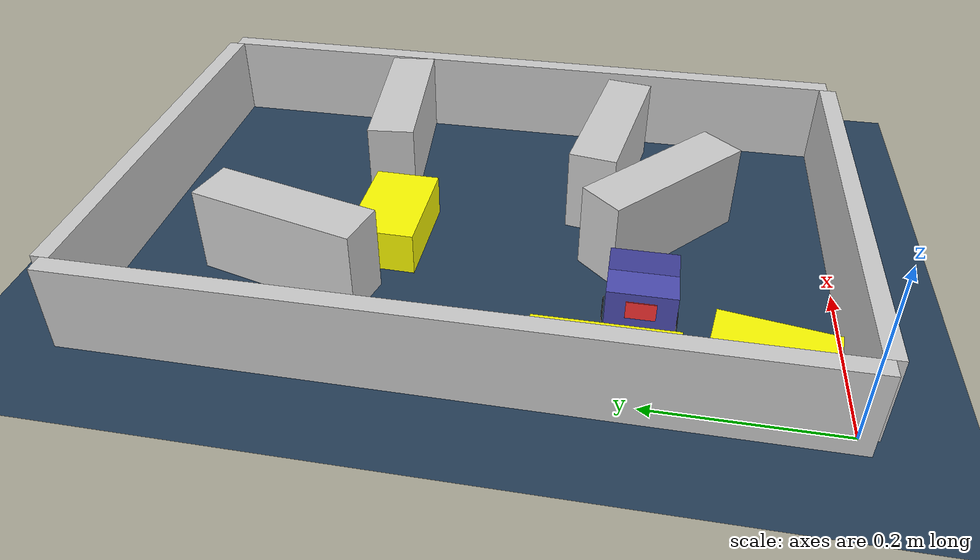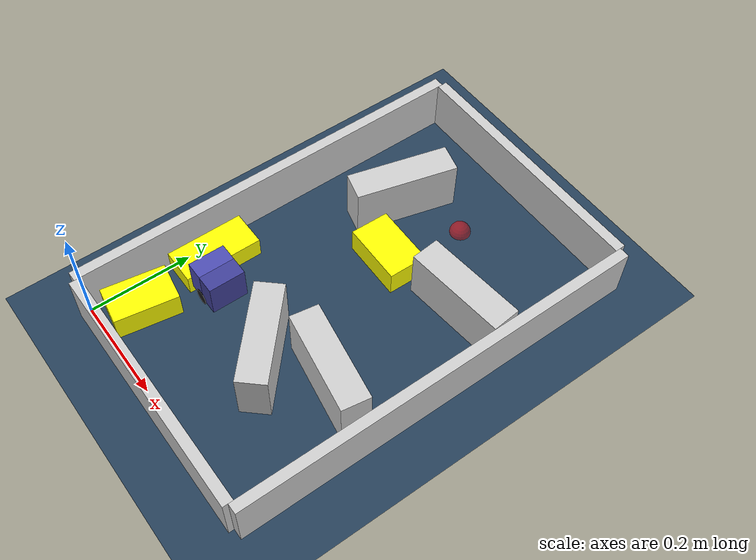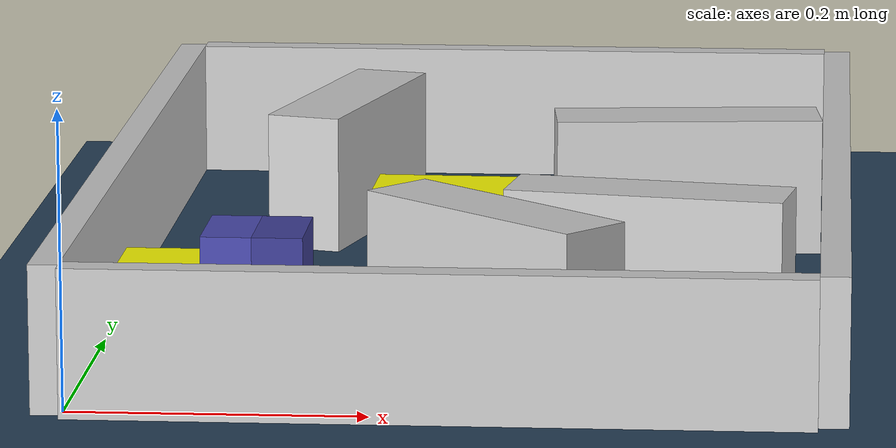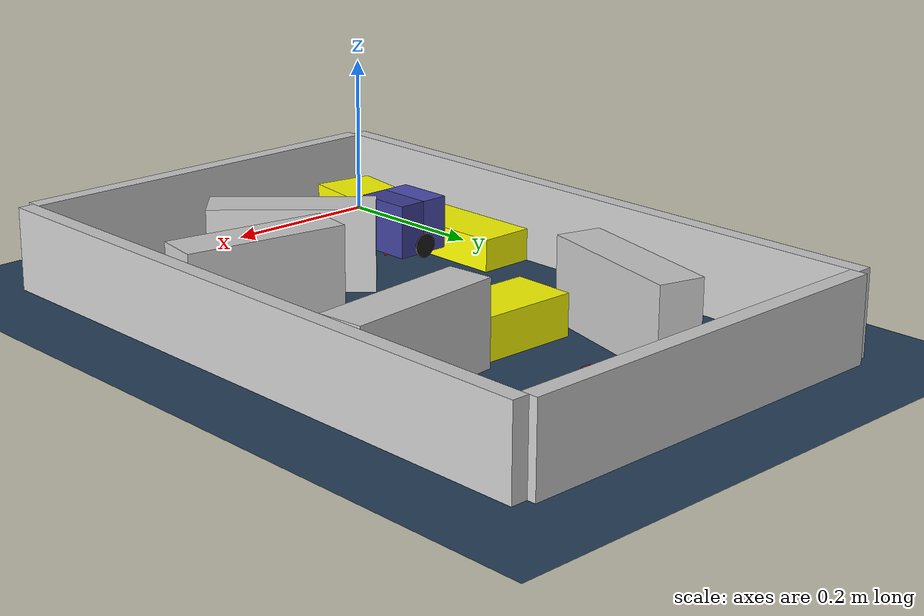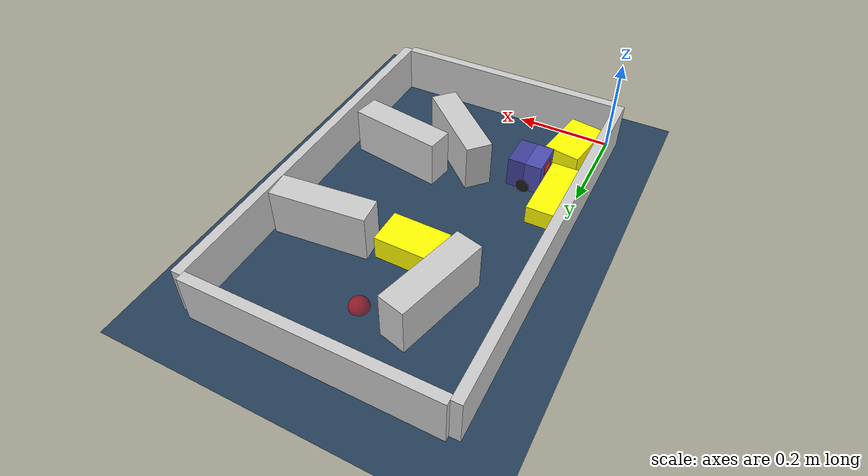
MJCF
<?xml version='1.0' encoding='utf-8'?>
<mujoco model="real_buildable">
  <compiler angle="degree" />
  <option timestep="0.002" integrator="implicitfast" iterations="100" cone="elliptic" />
  <default>
    <geom density="1" />
  </default>
  <asset>
    <texture builtin="gradient" height="3072" rgb1="0.3 0.5 0.7" rgb2="0 0 0" type="skybox" width="512" />
    <texture builtin="checker" height="300" mark="edge" markrgb="0.8 0.8 0.8" name="groundplane" rgb1="0.2 0.3 0.4" rgb2="0.1 0.2 0.3" type="2d" width="300" />
    <material name="groundplane" reflectance="0.2" texrepeat="5 5" texture="groundplane" texuniform="true" />
  </asset>
  <worldbody>
    <light dir="0 0 -1" directional="true" pos="0 0 1.5" />
    <geom name="floor" type="plane" condim="4" friction="0.5 0.005 0.001" material="groundplane" size="0 0 0.05" />
    <body name="walls">
      <geom name="wall_boundary_left" type="box" condim="4" friction="1.0 0.005 0.0001" rgba="0.8 0.8 0.8 1" pos="-0.010000 0.387500 0.050000" euler="0 0 0.000000" size="0.010000 0.397500 0.050000" />
      <geom name="wall_boundary_right" type="box" condim="4" friction="1.0 0.005 0.0001" rgba="0.8 0.8 0.8 1" pos="0.500000 0.387500 0.050000" euler="0 0 0.000000" size="0.010000 0.397500 0.050000" />
      <geom name="wall_boundary_bottom" type="box" condim="4" friction="1.0 0.005 0.0001" rgba="0.8 0.8 0.8 1" pos="0.245000 -0.010000 0.050000" euler="0 0 0.000000" size="0.245000 0.010000 0.050000" />
      <geom name="wall_boundary_top" type="box" condim="4" friction="1.0 0.005 0.0001" rgba="0.8 0.8 0.8 1" pos="0.245000 0.785000 0.050000" euler="0 0 0.000000" size="0.245000 0.010000 0.050000" />
      <geom name="wall_inner_1" type="box" condim="4" friction="1.0 0.005 0.0001" rgba="0.8 0.8 0.8 1" pos="0.268367 0.190140 0.050000" euler="0 0 -42.186027" size="0.097500 0.027500 0.050000" />
      <geom name="wall_inner_2" type="box" condim="4" friction="1.0 0.005 0.0001" rgba="0.8 0.8 0.8 1" pos="0.371868 0.254587 0.050000" euler="0 0 -9.385357" size="0.097500 0.027500 0.050000" />
      <geom name="wall_inner_3" type="box" condim="4" friction="1.0 0.005 0.0001" rgba="0.8 0.8 0.8 1" pos="0.390000 0.521000 0.050000" euler="0 0 5.500000" size="0.097500 0.027500 0.050000" />
      <geom name="wall_inner_4" type="box" condim="4" friction="1.0 0.005 0.0001" rgba="0.8 0.8 0.8 1" pos="0.132000 0.586000 0.050000" euler="0 0 75.200000" size="0.097500 0.027500 0.050000" />
    </body>
    <body name="car" pos="0.1048239597409117 0.20405692971691031 0.01" quat="0.00079649844527179077 0 0 0.99999968279506302">
      <freejoint name="car_freejoint" />
      <inertial pos="0 0 0.0375" mass="0.35" diaginertia="0.000266 0.000266 0.000286" />
      <geom name="front_chassis_collision" type="box" pos="0.0175 0 0.0375" size="0.0175 0.035 0.0325" rgba="0.3 0.3 0.7 1" />
      <geom name="rear_chassis_collision" type="box" pos="-0.0175 0 0.0375" size="0.0175 0.035 0.0325" rgba="0.25 0.25 0.6 1" />
      <geom name="front_marker" type="box" pos="0.034 0 0.0505" size="0.002 0.015 0.01" rgba="1 0.2 0.2 1" contype="0" conaffinity="0" />
      <body name="rear_support_body" pos="-0.03 0 0.0025">
        <joint name="rear_caster_joint" type="ball" damping="0.0001" />
        <inertial pos="0 0 0" mass="0.025" diaginertia="0.000001 0.000001 0.000001" />
        <geom name="rear_support" type="sphere" pos="0 0 0" size="0.0025" friction="0 0 0" rgba="0.7 0.1 0.1 1" />
      </body>
      <body name="front_support_body" pos="0.03 0 0.0025">
        <joint name="front_caster_joint" type="ball" damping="0.0001" />
        <inertial pos="0 0 0" mass="0.025" diaginertia="0.000001 0.000001 0.000001" />
        <geom name="front_support" type="sphere" pos="0 0 0" size="0.0025" friction="0 0 0" rgba="0.1 0.7 0.1 1" />
      </body>
      <body name="left_wheel" pos="0 0.0375 0.015">
        <inertial pos="0 0 0" mass="0.05" diaginertia="0.000003 0.000006 0.000003" />
        <joint name="left_wheel_joint" type="hinge" axis="0 1 0" damping="0.01" armature="0.0001" />
        <geom name="left_wheel_collision" type="cylinder" size="0.015 0.0005" euler="90 0 0" rgba="0.1 0.1 0.1 1" />
      </body>
      <body name="right_wheel" pos="0 -0.0375 0.015">
        <inertial pos="0 0 0" mass="0.05" diaginertia="0.000003 0.000006 0.000003" />
        <joint name="right_wheel_joint" type="hinge" axis="0 1 0" damping="0.01" armature="0.0001" />
        <geom name="right_wheel_collision" type="cylinder" size="0.015 0.0005" euler="90 0 0" rgba="0.1 0.1 0.1 1" />
      </body>
    </body>
    <body name="obstacle_0_movable">
      <geom name="obstacle_0_movable" condim="4" pos="0.034932034415758539 0.23636329951009613 0.02" friction="1 0.005 0.0001" rgba="1 1 0 1" size="0.035000 0.075000 0.020000" type="box" mass="0.1" quat="0.00031491200632933141 0 0 0.99999995041521295" />
      <joint type="free" />
    </body>
    <body name="obstacle_1_movable">
      <geom name="obstacle_1_movable" condim="4" pos="0.21999999999999983 0.48999999999999821 0.025000000000000001" friction="1 0.005 0.0001" rgba="1 1 0 1" size="0.037500 0.060000 0.025000" type="box" mass="0.1" quat="0.71447267963280336 0 0 0.69966334051336543" />
      <joint type="free" />
    </body>
    <body name="obstacle_2_movable">
      <geom name="obstacle_2_movable" condim="4" pos="0.052142999999999995 0.076808999999999961 0.025000000000000001" friction="1 0.005 0.0001" rgba="1 1 0 1" size="0.037500 0.060000 0.025000" type="box" mass="0.1" quat="0.081653172891671039 0 0 0.99666080456528583" />
      <joint type="free" />
    </body>
    <site name="goal" type="sphere" pos="0.245000 0.640000 0.0" size="0.02" rgba="1 0 0 0.5" />
  </worldbody>
  <actuator>
    <velocity name="left_wheel_drive" joint="left_wheel_joint" ctrlrange="-25 25" kv="0.75" forcerange="-0.5 0.5" />
    <velocity name="right_wheel_drive" joint="right_wheel_joint" ctrlrange="-25 25" kv="0.75" forcerange="-0.5 0.5" />
  </actuator>
</mujoco>
